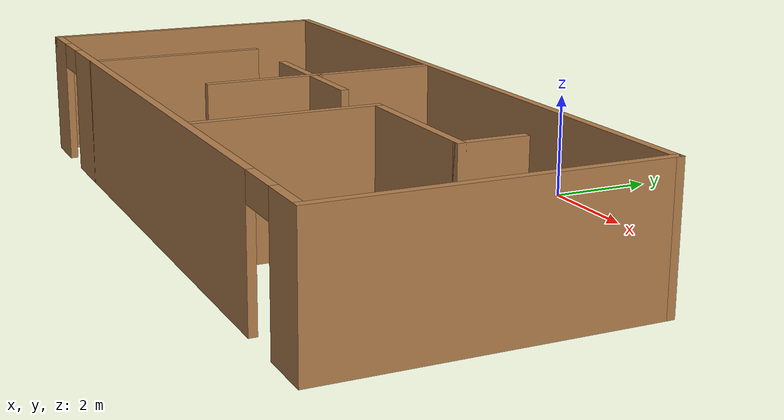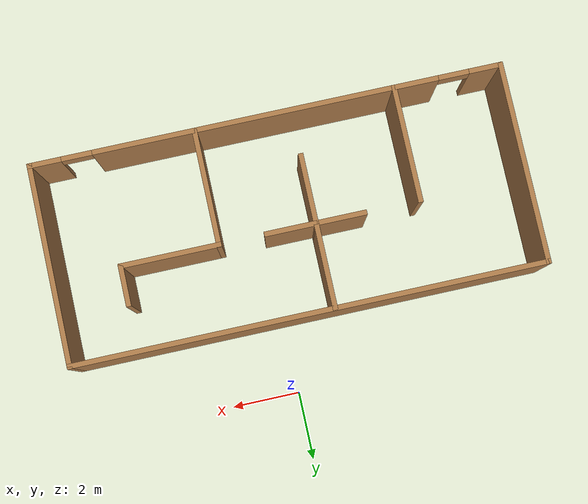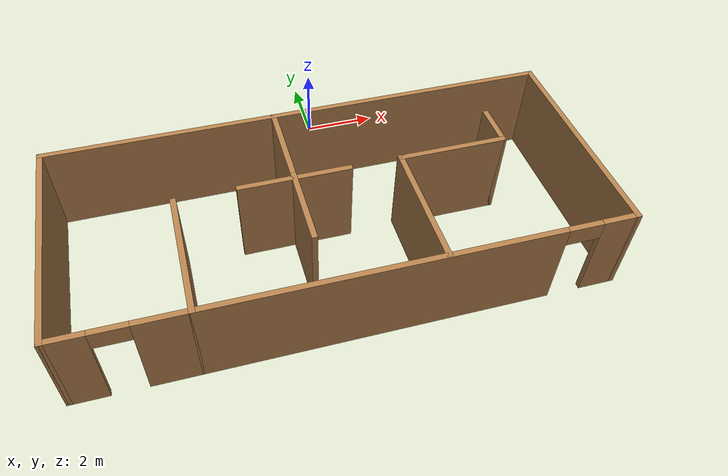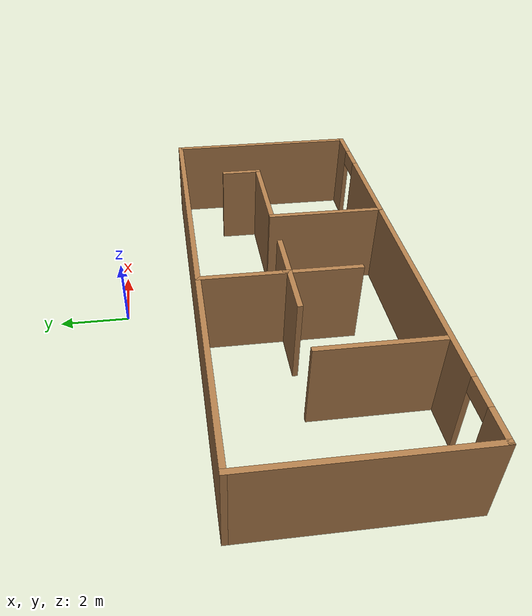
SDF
<?xml version='1.0'?>
<sdf version='1.6'>
  <model name='basic'>
    <pose frame=''>-0.765 -5.015 0 0 -0 0</pose>
    <link name='Wall_0'>
      <collision name='Wall_0_Collision'>
        <geometry>
          <box>
            <size>6 0.15 2.5</size>
          </box>
        </geometry>
        <pose frame=''>0 0 1.25 0 -0 0</pose>
      </collision>
      <visual name='Wall_0_Visual'>
        <pose frame=''>0 0 1.25 0 -0 0</pose>
        <geometry>
          <box>
            <size>6 0.15 2.5</size>
          </box>
        </geometry>
        <material>
          <script>
            <uri>file://media/materials/scripts/gazebo.material</uri>
            <name>Gazebo/Wood</name>
          </script>
          <ambient>1 1 1 1</ambient>
        </material>
        <meta>
          <layer>0</layer>
        </meta>
      </visual>
      <pose frame=''>-6.925 0 0 0 -0 -1.5708</pose>
    </link>
    <link name='Wall_1'>
      <pose frame=''>0 -2.925 0 0 -0 0</pose>
      <visual name='Wall_1_Visual_0'>
        <pose frame=''>-6.4925 0 1.25 0 -0 0</pose>
        <geometry>
          <box>
            <size>1.015 0.15 2.5</size>
          </box>
        </geometry>
        <material>
          <script>
            <uri>file://media/materials/scripts/gazebo.material</uri>
            <name>Gazebo/Wood</name>
          </script>
          <ambient>1 1 1 1</ambient>
        </material>
        <meta>
          <layer>0</layer>
        </meta>
      </visual>
      <collision name='Wall_1_Collision_0'>
        <geometry>
          <box>
            <size>1.015 0.15 2.5</size>
          </box>
        </geometry>
        <pose frame=''>-6.4925 0 1.25 0 -0 0</pose>
      </collision>
      <visual name='Wall_1_Visual_1'>
        <pose frame=''>0.01 0 1.25 0 -0 0</pose>
        <geometry>
          <box>
            <size>10.19 0.15 2.5</size>
          </box>
        </geometry>
        <material>
          <script>
            <uri>file://media/materials/scripts/gazebo.material</uri>
            <name>Gazebo/Wood</name>
          </script>
          <ambient>1 1 1 1</ambient>
        </material>
        <meta>
          <layer>0</layer>
        </meta>
      </visual>
      <collision name='Wall_1_Collision_1'>
        <geometry>
          <box>
            <size>10.19 0.15 2.5</size>
          </box>
        </geometry>
        <pose frame=''>0.01 0 1.25 0 -0 0</pose>
      </collision>
      <visual name='Wall_1_Visual_2'>
        <pose frame=''>6.5025 0 1.25 0 -0 0</pose>
        <geometry>
          <box>
            <size>0.995 0.15 2.5</size>
          </box>
        </geometry>
        <material>
          <script>
            <uri>file://media/materials/scripts/gazebo.material</uri>
            <name>Gazebo/Wood</name>
          </script>
          <ambient>1 1 1 1</ambient>
        </material>
        <meta>
          <layer>0</layer>
        </meta>
      </visual>
      <collision name='Wall_1_Collision_2'>
        <geometry>
          <box>
            <size>0.995 0.15 2.5</size>
          </box>
        </geometry>
        <pose frame=''>6.5025 0 1.25 0 -0 0</pose>
      </collision>
      <visual name='Wall_1_Visual_3'>
        <pose frame=''>-5.535 0 2.25 0 -0 0</pose>
        <geometry>
          <box>
            <size>0.9 0.15 0.5</size>
          </box>
        </geometry>
        <material>
          <script>
            <uri>file://media/materials/scripts/gazebo.material</uri>
            <name>Gazebo/Wood</name>
          </script>
          <ambient>1 1 1 1</ambient>
        </material>
        <meta>
          <layer>0</layer>
        </meta>
      </visual>
      <collision name='Wall_1_Collision_3'>
        <geometry>
          <box>
            <size>0.9 0.15 0.5</size>
          </box>
        </geometry>
        <pose frame=''>-5.535 0 2.25 0 -0 0</pose>
      </collision>
      <visual name='Wall_1_Visual_4'>
        <pose frame=''>5.555 0 2.25 0 -0 0</pose>
        <geometry>
          <box>
            <size>0.9 0.15 0.5</size>
          </box>
        </geometry>
        <material>
          <script>
            <uri>file://media/materials/scripts/gazebo.material</uri>
            <name>Gazebo/Wood</name>
          </script>
          <ambient>1 1 1 1</ambient>
        </material>
        <meta>
          <layer>0</layer>
        </meta>
      </visual>
      <collision name='Wall_1_Collision_4'>
        <geometry>
          <box>
            <size>0.9 0.15 0.5</size>
          </box>
        </geometry>
        <pose frame=''>5.555 0 2.25 0 -0 0</pose>
      </collision>
    </link>
    <link name='Wall_10'>
      <collision name='Wall_10_Collision'>
        <geometry>
          <box>
            <size>3.5 0.15 2.5</size>
          </box>
        </geometry>
        <pose frame=''>0 0 1.25 0 -0 0</pose>
      </collision>
      <visual name='Wall_10_Visual'>
        <pose frame=''>0 0 1.25 0 -0 0</pose>
        <geometry>
          <box>
            <size>3.5 0.15 2.5</size>
          </box>
        </geometry>
        <material>
          <script>
            <uri>file://media/materials/scripts/gazebo.material</uri>
            <name>Gazebo/Wood</name>
          </script>
          <ambient>1 1 1 1</ambient>
        </material>
        <meta>
          <layer>0</layer>
        </meta>
      </visual>
      <pose frame=''>2.105 -1.22 0 0 -0 1.5708</pose>
    </link>
    <link name='Wall_12'>
      <collision name='Wall_12_Collision'>
        <geometry>
          <box>
            <size>3 0.15 2.5</size>
          </box>
        </geometry>
        <pose frame=''>0 0 1.25 0 -0 0</pose>
      </collision>
      <visual name='Wall_12_Visual'>
        <pose frame=''>0 0 1.25 0 -0 0</pose>
        <geometry>
          <box>
            <size>3 0.15 2.5</size>
          </box>
        </geometry>
        <material>
          <script>
            <uri>file://media/materials/scripts/gazebo.material</uri>
            <name>Gazebo/Wood</name>
          </script>
          <ambient>1 1 1 1</ambient>
        </material>
        <meta>
          <layer>0</layer>
        </meta>
      </visual>
      <pose frame=''>3.53 0.455 0 0 -0 0</pose>
    </link>
    <link name='Wall_13'>
      <collision name='Wall_13_Collision'>
        <geometry>
          <box>
            <size>1.25 0.15 2.5</size>
          </box>
        </geometry>
        <pose frame=''>0 0 1.25 0 -0 0</pose>
      </collision>
      <visual name='Wall_13_Visual'>
        <pose frame=''>0 0 1.25 0 -0 0</pose>
        <geometry>
          <box>
            <size>1.25 0.15 2.5</size>
          </box>
        </geometry>
        <material>
          <script>
            <uri>file://media/materials/scripts/gazebo.material</uri>
            <name>Gazebo/Wood</name>
          </script>
          <ambient>1 1 1 1</ambient>
        </material>
        <meta>
          <layer>0</layer>
        </meta>
      </visual>
      <pose frame=''>4.955 1.005 0 0 -0 1.5708</pose>
    </link>
    <link name='Wall_16'>
      <collision name='Wall_16_Collision'>
        <geometry>
          <box>
            <size>3 0.15 2.5</size>
          </box>
        </geometry>
        <pose frame=''>0 0 1.25 0 -0 0</pose>
      </collision>
      <visual name='Wall_16_Visual'>
        <pose frame=''>0 0 1.25 0 -0 0</pose>
        <geometry>
          <box>
            <size>3 0.15 2.5</size>
          </box>
        </geometry>
        <material>
          <script>
            <uri>file://media/materials/scripts/gazebo.material</uri>
            <name>Gazebo/Wood</name>
          </script>
          <ambient>1 1 1 1</ambient>
        </material>
        <meta>
          <layer>0</layer>
        </meta>
      </visual>
      <pose frame=''>-0.71 0.445 0 0 -0 0</pose>
    </link>
    <link name='Wall_18'>
      <collision name='Wall_18_Collision'>
        <geometry>
          <box>
            <size>2.25 0.15 2.5</size>
          </box>
        </geometry>
        <pose frame=''>0 0 1.25 0 -0 0</pose>
      </collision>
      <visual name='Wall_18_Visual'>
        <pose frame=''>0 0 1.25 0 -0 0</pose>
        <geometry>
          <box>
            <size>2.25 0.15 2.5</size>
          </box>
        </geometry>
        <material>
          <script>
            <uri>file://media/materials/scripts/gazebo.material</uri>
            <name>Gazebo/Wood</name>
          </script>
          <ambient>1 1 1 1</ambient>
        </material>
        <meta>
          <layer>0</layer>
        </meta>
      </visual>
      <pose frame=''>-0.725 -0.495 0 0 -0 -1.5708</pose>
    </link>
    <link name='Wall_2'>
      <collision name='Wall_2_Collision'>
        <geometry>
          <box>
            <size>6 0.15 2.5</size>
          </box>
        </geometry>
        <pose frame=''>0 0 1.25 0 -0 0</pose>
      </collision>
      <visual name='Wall_2_Visual'>
        <pose frame=''>0 0 1.25 0 -0 0</pose>
        <geometry>
          <box>
            <size>6 0.15 2.5</size>
          </box>
        </geometry>
        <material>
          <script>
            <uri>file://media/materials/scripts/gazebo.material</uri>
            <name>Gazebo/Wood</name>
          </script>
          <ambient>1 1 1 1</ambient>
        </material>
        <meta>
          <layer>0</layer>
        </meta>
      </visual>
      <pose frame=''>6.925 0 0 0 -0 1.5708</pose>
    </link>
    <link name='Wall_3'>
      <collision name='Wall_3_Collision'>
        <geometry>
          <box>
            <size>14 0.15 2.5</size>
          </box>
        </geometry>
        <pose frame=''>0 0 1.25 0 -0 0</pose>
      </collision>
      <visual name='Wall_3_Visual'>
        <pose frame=''>0 0 1.25 0 -0 0</pose>
        <geometry>
          <box>
            <size>14 0.15 2.5</size>
          </box>
        </geometry>
        <material>
          <script>
            <uri>file://media/materials/scripts/gazebo.material</uri>
            <name>Gazebo/Wood</name>
          </script>
          <ambient>1 1 1 1</ambient>
        </material>
        <meta>
          <layer>0</layer>
        </meta>
      </visual>
      <pose frame=''>0 2.925 0 0 -0 3.14159</pose>
    </link>
    <link name='Wall_6'>
      <collision name='Wall_6_Collision'>
        <geometry>
          <box>
            <size>3.5 0.15 2.5</size>
          </box>
        </geometry>
        <pose frame=''>0 0 1.25 0 -0 0</pose>
      </collision>
      <visual name='Wall_6_Visual'>
        <pose frame=''>0 0 1.25 0 -0 0</pose>
        <geometry>
          <box>
            <size>3.5 0.15 2.5</size>
          </box>
        </geometry>
        <material>
          <script>
            <uri>file://media/materials/scripts/gazebo.material</uri>
            <name>Gazebo/Wood</name>
          </script>
          <ambient>1 1 1 1</ambient>
        </material>
        <meta>
          <layer>0</layer>
        </meta>
      </visual>
      <pose frame=''>-3.775 -1.25 0 0 -0 1.5708</pose>
    </link>
    <link name='Wall_8'>
      <collision name='Wall_8_Collision'>
        <geometry>
          <box>
            <size>2.5 0.15 2.5</size>
          </box>
        </geometry>
        <pose frame=''>0 0 1.25 0 -0 0</pose>
      </collision>
      <visual name='Wall_8_Visual'>
        <pose frame=''>0 0 1.25 0 -0 0</pose>
        <geometry>
          <box>
            <size>2.5 0.15 2.5</size>
          </box>
        </geometry>
        <material>
          <script>
            <uri>file://media/materials/scripts/gazebo.material</uri>
            <name>Gazebo/Wood</name>
          </script>
          <ambient>1 1 1 1</ambient>
        </material>
        <meta>
          <layer>0</layer>
        </meta>
      </visual>
      <pose frame=''>-0.725 1.73 0 0 -0 -1.5708</pose>
    </link>
    <static>1</static>
  </model>
</sdf>
